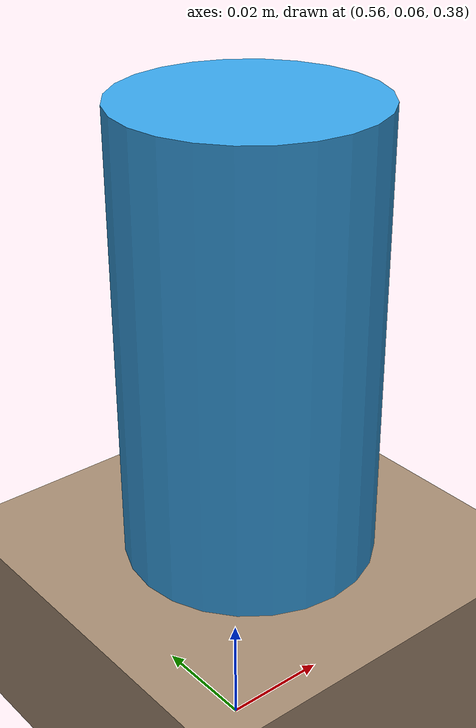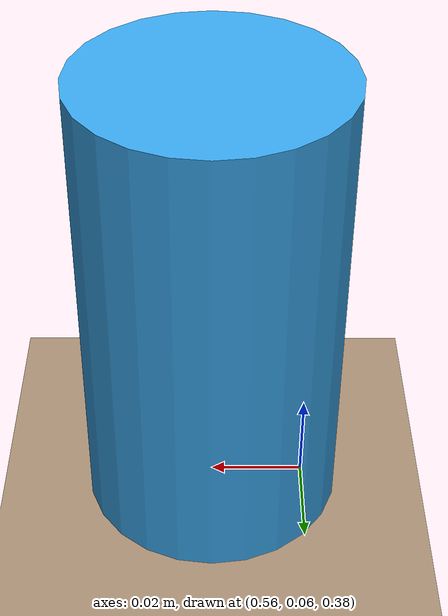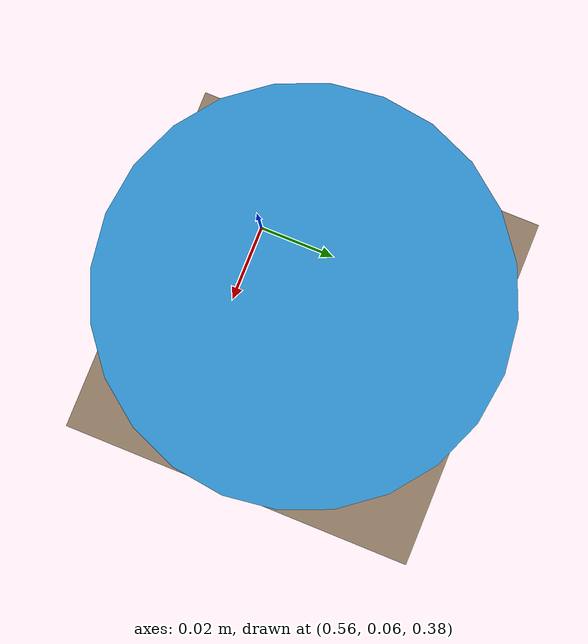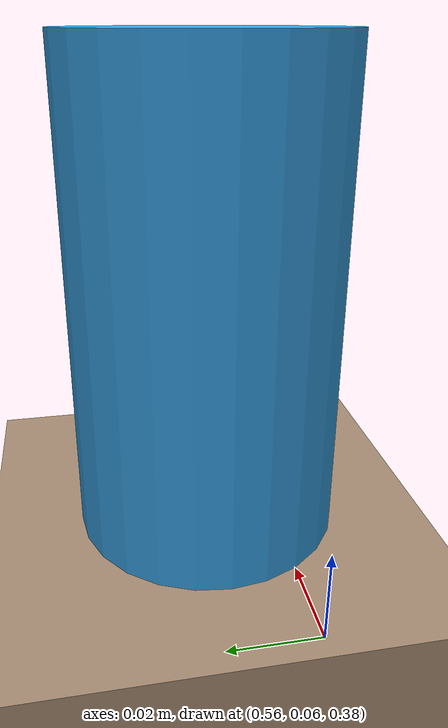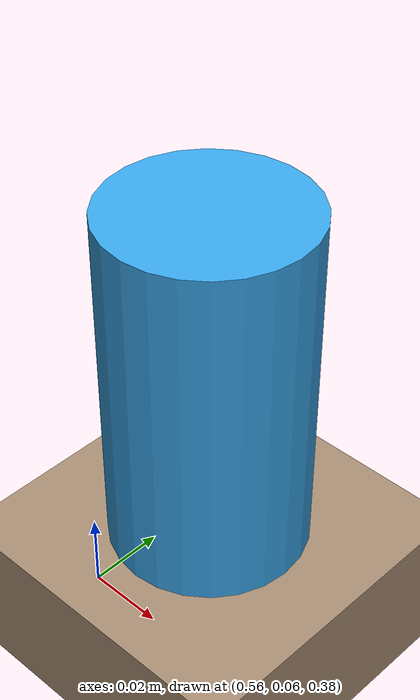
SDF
<?xml version="1.0" ?>
<sdf version="1.6">
  <world name="phase6_tabletop_world">
    <gravity>0 0 -9.81</gravity>
    <magnetic_field>6e-06 2.3e-05 -4.2e-05</magnetic_field>
    <atmosphere type="adiabatic"/>

    <light name="sun" type="directional">
      <cast_shadows>true</cast_shadows>
      <pose>0 0 10 0 0 0</pose>
      <diffuse>0.85 0.85 0.85 1.0</diffuse>
      <specular>0.2 0.2 0.2 1.0</specular>
      <attenuation>
        <range>1000</range>
        <constant>0.9</constant>
        <linear>0.01</linear>
        <quadratic>0.001</quadratic>
      </attenuation>
      <direction>-0.5 0.1 -0.9</direction>
    </light>

    <model name="ground_plane">
      <static>true</static>
      <link name="ground_link">
        <collision name="ground_collision">
          <geometry>
            <plane>
              <normal>0 0 1</normal>
              <size>50 50</size>
            </plane>
          </geometry>
          <surface>
            <friction>
              <ode>
                <mu>1.0</mu>
                <mu2>1.0</mu2>
              </ode>
            </friction>
          </surface>
        </collision>
        <visual name="ground_visual">
          <geometry>
            <plane>
              <normal>0 0 1</normal>
              <size>50 50</size>
            </plane>
          </geometry>
          <material>
            <ambient>0.35 0.35 0.35 1.0</ambient>
            <diffuse>0.42 0.42 0.42 1.0</diffuse>
          </material>
        </visual>
      </link>
    </model>

    <model name="table">
      <static>true</static>
      <pose>0.5 0.0 0.38 0 0 0</pose>
      <link name="table_link">
        <collision name="table_collision">
          <geometry>
            <box>
              <size>1.0 0.8 0.04</size>
            </box>
          </geometry>
        </collision>
        <visual name="table_visual">
          <geometry>
            <box>
              <size>1.0 0.8 0.04</size>
            </box>
          </geometry>
          <material>
            <ambient>0.55 0.45 0.35 1.0</ambient>
            <diffuse>0.65 0.55 0.45 1.0</diffuse>
          </material>
        </visual>
      </link>
    </model>

    <model name="target_cylinder">
      <static>false</static>
      <pose>0.58 0.08 0.44 0 0 0</pose>
      <link name="target_link">
        <inertial>
          <mass>0.2</mass>
          <inertia>
            <ixx>0.0005</ixx>
            <iyy>0.0005</iyy>
            <izz>0.0002</izz>
            <ixy>0</ixy>
            <ixz>0</ixz>
            <iyz>0</iyz>
          </inertia>
        </inertial>
        <collision name="target_collision">
          <geometry>
            <cylinder>
              <radius>0.025</radius>
              <length>0.10</length>
            </cylinder>
          </geometry>
        </collision>
        <visual name="target_visual">
          <geometry>
            <cylinder>
              <radius>0.025</radius>
              <length>0.10</length>
            </cylinder>
          </geometry>
          <material>
            <ambient>0.18 0.55 0.80 1.0</ambient>
            <diffuse>0.22 0.65 0.92 1.0</diffuse>
          </material>
        </visual>
      </link>
    </model>
  </world>
</sdf>
